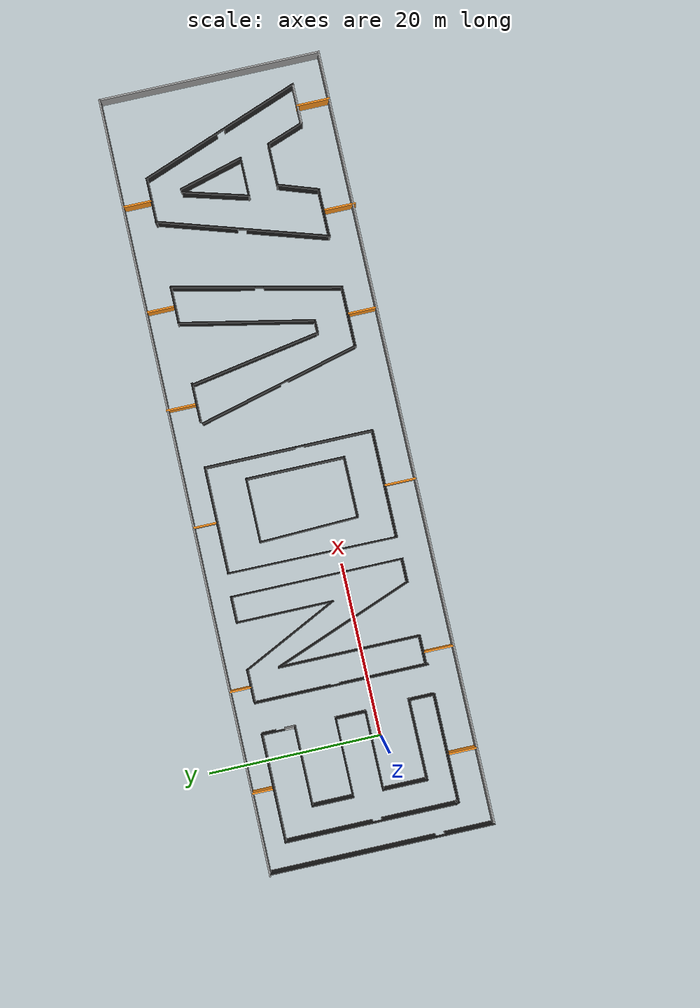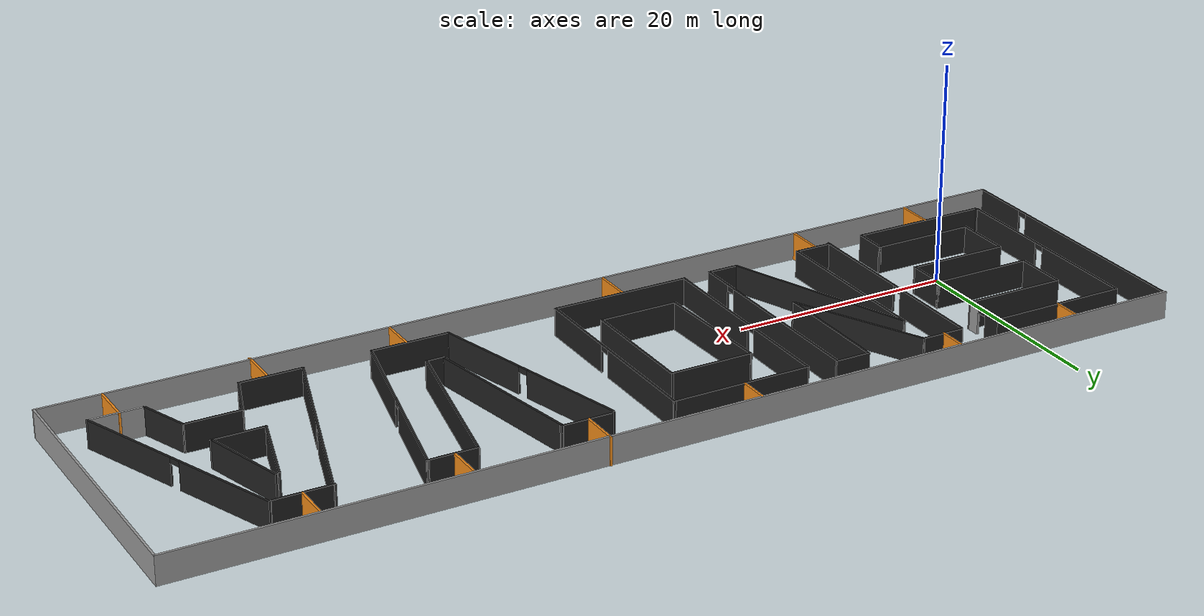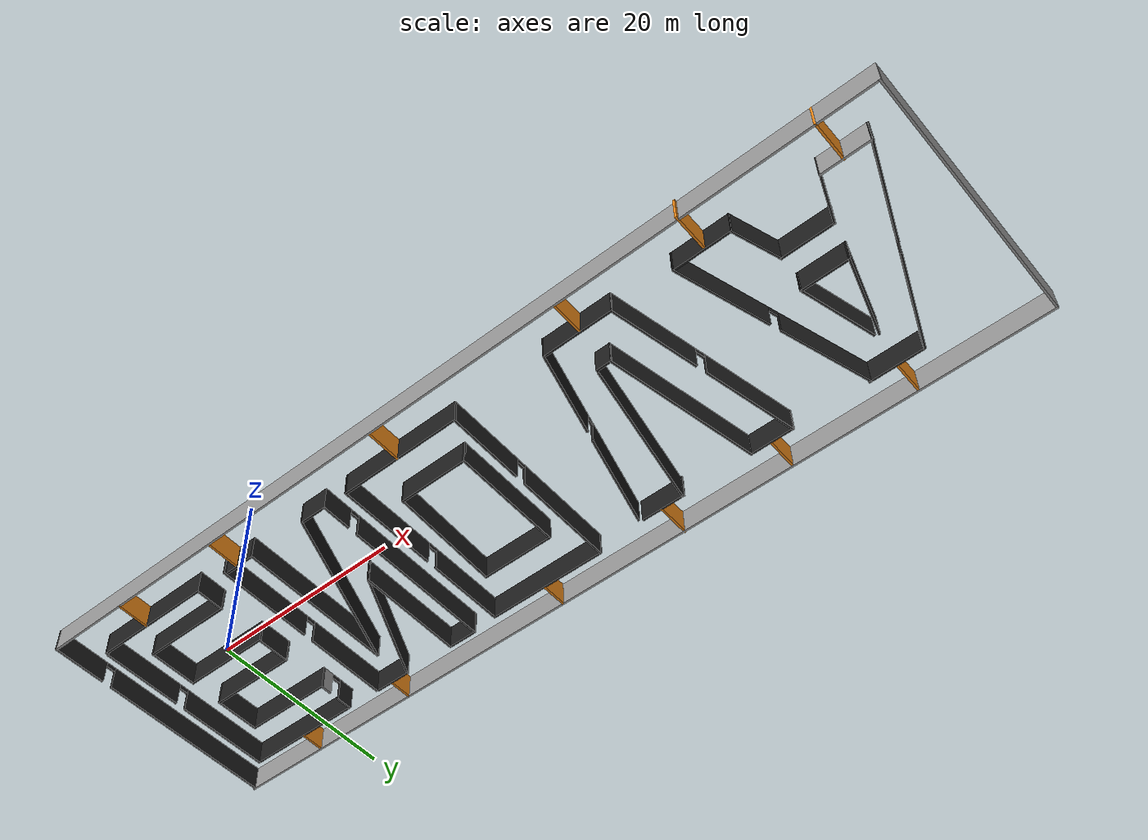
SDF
<?xml version='1.0'?>
<sdf version='1.4'>

  <model name='BuildingDefaultName'>
    <link name='Wall_10'>
      <collision name='Wall_10_Collision'>
        <geometry>
          <box>
            <size>12.516 0.2 2.5</size>
          </box>
        </geometry>
        <pose>0 0 1.25 0 -0 0</pose>
      </collision>
      <visual name='Wall_10_Visual'>
        <pose>0 0 1.25 0 -0 0</pose>
        <geometry>
          <box>
            <size>12.516 0.2 2.5</size>
          </box>
        </geometry>
        <material>
          <script>
            <uri>file://media/materials/scripts/gazebo.material</uri>
            <name>Gazebo/Black</name>
          </script>
        </material>
      </visual>
      <velocity_decay>
        <linear>0</linear>
        <angular>0</angular>
      </velocity_decay>
      <pose>-2.95676 13.1223 0 0 -0 0</pose>
    </link>
    <link name='Wall_101'>
      <collision name='Wall_101_Collision'>
        <geometry>
          <box>
            <size>3.2825 0.2 2.5</size>
          </box>
        </geometry>
        <pose>0 0 1.25 0 -0 0</pose>
      </collision>
      <visual name='Wall_101_Visual'>
        <pose>0 0 1.25 0 -0 0</pose>
        <geometry>
          <box>
            <size>3.2825 0.2 2.5</size>
          </box>
        </geometry>
        <material>
          <script>
            <uri>file://media/materials/scripts/gazebo.material</uri>
            <name>Gazebo/Orange</name>
          </script>
        </material>
      </visual>
      <velocity_decay>
        <linear>0</linear>
        <angular>0</angular>
      </velocity_decay>
      <pose>65.4245 13.8866 0 0 -0 1.5708</pose>
    </link>
    <link name='Wall_103'>
      <collision name='Wall_103_Collision'>
        <geometry>
          <box>
            <size>3.9675 0.2 2.5</size>
          </box>
        </geometry>
        <pose>0 0 1.25 0 -0 0</pose>
      </collision>
      <visual name='Wall_103_Visual'>
        <pose>0 0 1.25 0 -0 0</pose>
        <geometry>
          <box>
            <size>3.9675 0.2 2.5</size>
          </box>
        </geometry>
        <material>
          <script>
            <uri>file://media/materials/scripts/gazebo.material</uri>
            <name>Gazebo/Orange</name>
          </script>
        </material>
      </visual>
      <velocity_decay>
        <linear>0</linear>
        <angular>0</angular>
      </velocity_decay>
      <pose>72.617 -8.37593 0 0 0 -1.5708</pose>
    </link>
    <link name='Wall_105'>
      <collision name='Wall_105_Collision'>
        <geometry>
          <box>
            <size>3.2825 0.2 2.5</size>
          </box>
        </geometry>
        <pose>0 0 1.25 0 -0 0</pose>
      </collision>
      <visual name='Wall_105_Visual'>
        <pose>0 0 1.25 0 -0 0</pose>
        <geometry>
          <box>
            <size>3.2825 0.2 2.5</size>
          </box>
        </geometry>
        <material>
          <script>
            <uri>file://media/materials/scripts/gazebo.material</uri>
            <name>Gazebo/Orange</name>
          </script>
        </material>
      </visual>
      <velocity_decay>
        <linear>0</linear>
        <angular>0</angular>
      </velocity_decay>
      <pose>47.7857 -8.54718 0 0 0 -1.5708</pose>
    </link>
    <link name='Wall_11'>
      <pose>3.20124 11.2042 0 0 0 -1.5708</pose>
      <visual name='Wall_11_Visual_0'>
        <pose>-1.14551 0 1.25 0 -0 0</pose>
        <geometry>
          <box>
            <size>1.74516 0.2 2.5</size>
          </box>
        </geometry>
        <material>
          <script>
            <uri>file://media/materials/scripts/gazebo.material</uri>
            <name>Gazebo/Black</name>
          </script>
        </material>
      </visual>
      <collision name='Wall_11_Collision_0'>
        <geometry>
          <box>
            <size>1.74516 0.2 2.5</size>
          </box>
        </geometry>
        <pose>-1.14551 0 1.25 0 -0 0</pose>
      </collision>
      <visual name='Wall_11_Visual_1'>
        <pose>1.37258 0 1.25 0 -0 0</pose>
        <geometry>
          <box>
            <size>1.29101 0.2 2.5</size>
          </box>
        </geometry>
        <material>
          <script>
            <uri>file://media/materials/scripts/gazebo.material</uri>
            <name>Gazebo/Grey</name>
          </script>
        </material>
      </visual>
      <collision name='Wall_11_Collision_1'>
        <geometry>
          <box>
            <size>1.29101 0.2 2.5</size>
          </box>
        </geometry>
        <pose>1.37258 0 1.25 0 -0 0</pose>
      </collision>
      <visual name='Wall_11_Visual_2'>
        <pose>0.227072 0 2.25 0 -0 0</pose>
        <geometry>
          <box>
            <size>1 0.2 0.5</size>
          </box>
        </geometry>
        <material>
          <script>
            <uri>file://media/materials/scripts/gazebo.material</uri>
            <name>Gazebo/Black</name>
          </script>
        </material>
      </visual>
      <collision name='Wall_11_Collision_2'>
        <geometry>
          <box>
            <size>1 0.2 0.5</size>
          </box>
        </geometry>
        <pose>0.227072 0 2.25 0 -0 0</pose>
      </collision>
    </link>
    <link name='Wall_12'>
      <collision name='Wall_12_Collision'>
        <geometry>
          <box>
            <size>9.24877 0.2 2.5</size>
          </box>
        </geometry>
        <pose>0 0 1.25 0 -0 0</pose>
      </collision>
      <visual name='Wall_12_Visual'>
        <pose>0 0 1.25 0 -0 0</pose>
        <geometry>
          <box>
            <size>9.24877 0.2 2.5</size>
          </box>
        </geometry>
        <material>
          <script>
            <uri>file://media/materials/scripts/gazebo.material</uri>
            <name>Gazebo/Black</name>
          </script>
        </material>
      </visual>
      <velocity_decay>
        <linear>0</linear>
        <angular>0</angular>
      </velocity_decay>
      <pose>-1.32314 9.28609 0 0 -0 3.14159</pose>
    </link>
    <link name='Wall_13'>
      <collision name='Wall_13_Collision'>
        <geometry>
          <box>
            <size>4.91691 0.2 2.5</size>
          </box>
        </geometry>
        <pose>0 0 1.25 0 -0 0</pose>
      </collision>
      <visual name='Wall_13_Visual'>
        <pose>0 0 1.25 0 -0 0</pose>
        <geometry>
          <box>
            <size>4.91691 0.2 2.5</size>
          </box>
        </geometry>
        <material>
          <script>
            <uri>file://media/materials/scripts/gazebo.material</uri>
            <name>Gazebo/Black</name>
          </script>
        </material>
      </visual>
      <velocity_decay>
        <linear>0</linear>
        <angular>0</angular>
      </velocity_decay>
      <pose>-5.84752 6.92763 0 0 0 -1.5708</pose>
    </link>
    <link name='Wall_14'>
      <collision name='Wall_14_Collision'>
        <geometry>
          <box>
            <size>9.19077 0.2 2.5</size>
          </box>
        </geometry>
        <pose>0 0 1.25 0 -0 0</pose>
      </collision>
      <visual name='Wall_14_Visual'>
        <pose>0 0 1.25 0 -0 0</pose>
        <geometry>
          <box>
            <size>9.19077 0.2 2.5</size>
          </box>
        </geometry>
        <material>
          <script>
            <uri>file://media/materials/scripts/gazebo.material</uri>
            <name>Gazebo/Black</name>
          </script>
        </material>
      </visual>
      <velocity_decay>
        <linear>0</linear>
        <angular>0</angular>
      </velocity_decay>
      <pose>-1.35214 4.56918 0 0 -0 0</pose>
    </link>
    <link name='Wall_15'>
      <collision name='Wall_15_Collision'>
        <geometry>
          <box>
            <size>3.67554 0.2 2.5</size>
          </box>
        </geometry>
        <pose>0 0 1.25 0 -0 0</pose>
      </collision>
      <visual name='Wall_15_Visual'>
        <pose>0 0 1.25 0 -0 0</pose>
        <geometry>
          <box>
            <size>3.67554 0.2 2.5</size>
          </box>
        </geometry>
        <material>
          <script>
            <uri>file://media/materials/scripts/gazebo.material</uri>
            <name>Gazebo/Black</name>
          </script>
        </material>
      </visual>
      <velocity_decay>
        <linear>0</linear>
        <angular>0</angular>
      </velocity_decay>
      <pose>3.14324 2.83141 0 0 0 -1.5708</pose>
    </link>
    <link name='Wall_16'>
      <collision name='Wall_16_Collision'>
        <geometry>
          <box>
            <size>9.15305 0.2 2.5</size>
          </box>
        </geometry>
        <pose>0 0 1.25 0 -0 0</pose>
      </collision>
      <visual name='Wall_16_Visual'>
        <pose>0 0 1.25 0 -0 0</pose>
        <geometry>
          <box>
            <size>9.15305 0.2 2.5</size>
          </box>
        </geometry>
        <material>
          <script>
            <uri>file://media/materials/scripts/gazebo.material</uri>
            <name>Gazebo/Black</name>
          </script>
        </material>
      </visual>
      <velocity_decay>
        <linear>0</linear>
        <angular>0</angular>
      </velocity_decay>
      <pose>-1.33328 1.09364 0 0 -0 3.14159</pose>
    </link>
    <link name='Wall_17'>
      <collision name='Wall_17_Collision'>
        <geometry>
          <box>
            <size>5.29523 0.2 2.5</size>
          </box>
        </geometry>
        <pose>0 0 1.25 0 -0 0</pose>
      </collision>
      <visual name='Wall_17_Visual'>
        <pose>0 0 1.25 0 -0 0</pose>
        <geometry>
          <box>
            <size>5.29523 0.2 2.5</size>
          </box>
        </geometry>
        <material>
          <script>
            <uri>file://media/materials/scripts/gazebo.material</uri>
            <name>Gazebo/Black</name>
          </script>
        </material>
      </visual>
      <velocity_decay>
        <linear>0</linear>
        <angular>0</angular>
      </velocity_decay>
      <pose>-5.8098 -1.45398 0 0 0 -1.5708</pose>
    </link>
    <link name='Wall_18'>
      <collision name='Wall_18_Collision'>
        <geometry>
          <box>
            <size>9.37142 0.2 2.5</size>
          </box>
        </geometry>
        <pose>0 0 1.25 0 -0 0</pose>
      </collision>
      <visual name='Wall_18_Visual'>
        <pose>0 0 1.25 0 -0 0</pose>
        <geometry>
          <box>
            <size>9.37142 0.2 2.5</size>
          </box>
        </geometry>
        <material>
          <script>
            <uri>file://media/materials/scripts/gazebo.material</uri>
            <name>Gazebo/Black</name>
          </script>
        </material>
      </visual>
      <velocity_decay>
        <linear>0</linear>
        <angular>0</angular>
      </velocity_decay>
      <pose>-1.22409 -4.00159 0 0 -0 0</pose>
    </link>
    <link name='Wall_19'>
      <collision name='Wall_19_Collision'>
        <geometry>
          <box>
            <size>3.11156 0.2 2.5</size>
          </box>
        </geometry>
        <pose>0 0 1.25 0 -0 0</pose>
      </collision>
      <visual name='Wall_19_Visual'>
        <pose>0 0 1.25 0 -0 0</pose>
        <geometry>
          <box>
            <size>3.11156 0.2 2.5</size>
          </box>
        </geometry>
        <material>
          <script>
            <uri>file://media/materials/scripts/gazebo.material</uri>
            <name>Gazebo/Black</name>
          </script>
        </material>
      </visual>
      <velocity_decay>
        <linear>0</linear>
        <angular>0</angular>
      </velocity_decay>
      <pose>3.36161 -5.45737 0 0 0 -1.5708</pose>
    </link>
    <link name='Wall_20'>
      <collision name='Wall_20_Collision'>
        <geometry>
          <box>
            <size>12.5741 0.2 2.5</size>
          </box>
        </geometry>
        <pose>0 0 1.25 0 -0 0</pose>
      </collision>
      <visual name='Wall_20_Visual'>
        <pose>0 0 1.25 0 -0 0</pose>
        <geometry>
          <box>
            <size>12.5741 0.2 2.5</size>
          </box>
        </geometry>
        <material>
          <script>
            <uri>file://media/materials/scripts/gazebo.material</uri>
            <name>Gazebo/Black</name>
          </script>
        </material>
      </visual>
      <velocity_decay>
        <linear>0</linear>
        <angular>0</angular>
      </velocity_decay>
      <pose>-2.82545 -6.91315 0 0 -0 3.14159</pose>
    </link>
    <link name='Wall_21'>
      <collision name='Wall_21_Collision'>
        <geometry>
          <box>
            <size>0.491673 0.2 2.5</size>
          </box>
        </geometry>
        <pose>0 0 1.25 0 -0 0</pose>
      </collision>
      <visual name='Wall_21_Visual'>
        <pose>0 0 1.25 0 -0 0</pose>
        <geometry>
          <box>
            <size>0.491673 0.2 2.5</size>
          </box>
        </geometry>
        <material>
          <script>
            <uri>file://media/materials/scripts/gazebo.material</uri>
            <name>Gazebo/Black</name>
          </script>
        </material>
      </visual>
      <velocity_decay>
        <linear>0</linear>
        <angular>0</angular>
      </velocity_decay>
      <pose>-9.06364 -6.77657 0 0 -0 1.92894</pose>
    </link>
    <link name='Wall_23'>
      <pose>6.82727 3.06609 0 0 -0 1.5708</pose>
      <visual name='Wall_23_Visual_0'>
        <pose>-4.94921 0 1.25 0 -0 0</pose>
        <geometry>
          <box>
            <size>10.2995 0.2 2.5</size>
          </box>
        </geometry>
        <material>
          <script>
            <uri>file://media/materials/scripts/gazebo.material</uri>
            <name>Gazebo/Black</name>
          </script>
        </material>
      </visual>
      <collision name='Wall_23_Collision_0'>
        <geometry>
          <box>
            <size>10.2995 0.2 2.5</size>
          </box>
        </geometry>
        <pose>-4.94921 0 1.25 0 -0 0</pose>
      </collision>
      <visual name='Wall_23_Visual_1'>
        <pose>5.64974 0 1.25 0 -0 0</pose>
        <geometry>
          <box>
            <size>8.89841 0.2 2.5</size>
          </box>
        </geometry>
        <material>
          <script>
            <uri>file://media/materials/scripts/gazebo.material</uri>
            <name>Gazebo/Black</name>
          </script>
        </material>
      </visual>
      <collision name='Wall_23_Collision_1'>
        <geometry>
          <box>
            <size>8.89841 0.2 2.5</size>
          </box>
        </geometry>
        <pose>5.64974 0 1.25 0 -0 0</pose>
      </collision>
      <visual name='Wall_23_Visual_2'>
        <pose>0.700535 0 2.25 0 -0 0</pose>
        <geometry>
          <box>
            <size>1 0.2 0.5</size>
          </box>
        </geometry>
        <material>
          <script>
            <uri>file://media/materials/scripts/gazebo.material</uri>
            <name>Gazebo/Black</name>
          </script>
        </material>
      </visual>
      <collision name='Wall_23_Collision_2'>
        <geometry>
          <box>
            <size>1 0.2 0.5</size>
          </box>
        </geometry>
        <pose>0.700535 0 2.25 0 -0 0</pose>
      </collision>
    </link>
    <link name='Wall_25'>
      <collision name='Wall_25_Collision'>
        <geometry>
          <box>
            <size>3.37669 0.2 2.5</size>
          </box>
        </geometry>
        <pose>0 0 1.25 0 -0 0</pose>
      </collision>
      <visual name='Wall_25_Visual'>
        <pose>0 0 1.25 0 -0 0</pose>
        <geometry>
          <box>
            <size>3.37669 0.2 2.5</size>
          </box>
        </geometry>
        <material>
          <script>
            <uri>file://media/materials/scripts/gazebo.material</uri>
            <name>Gazebo/Black</name>
          </script>
        </material>
      </visual>
      <velocity_decay>
        <linear>0</linear>
        <angular>0</angular>
      </velocity_decay>
      <pose>8.56513 -6.76107 0 0 -0 0</pose>
    </link>
    <link name='Wall_26'>
      <collision name='Wall_26_Collision'>
        <geometry>
          <box>
            <size>16.5648 0.2 2.5</size>
          </box>
        </geometry>
        <pose>0 0 1.25 0 -0 0</pose>
      </collision>
      <visual name='Wall_26_Visual'>
        <pose>0 0 1.25 0 -0 0</pose>
        <geometry>
          <box>
            <size>16.5648 0.2 2.5</size>
          </box>
        </geometry>
        <material>
          <script>
            <uri>file://media/materials/scripts/gazebo.material</uri>
            <name>Gazebo/Black</name>
          </script>
        </material>
      </visual>
      <velocity_decay>
        <linear>0</linear>
        <angular>0</angular>
      </velocity_decay>
      <pose>10.1535 1.42132 0 0 -0 1.5708</pose>
    </link>
    <link name='Wall_27'>
      <collision name='Wall_27_Collision'>
        <geometry>
          <box>
            <size>17.7202 0.2 2.5</size>
          </box>
        </geometry>
        <pose>0 0 1.25 0 -0 0</pose>
      </collision>
      <visual name='Wall_27_Visual'>
        <pose>0 0 1.25 0 -0 0</pose>
        <geometry>
          <box>
            <size>17.7202 0.2 2.5</size>
          </box>
        </geometry>
        <material>
          <script>
            <uri>file://media/materials/scripts/gazebo.material</uri>
            <name>Gazebo/Black</name>
          </script>
        </material>
      </visual>
      <velocity_decay>
        <linear>0</linear>
        <angular>0</angular>
      </velocity_decay>
      <pose>13.282 1.42132 0 0 0 -1.20559</pose>
    </link>
    <link name='Wall_28'>
      <collision name='Wall_28_Collision'>
        <geometry>
          <box>
            <size>2.89538 0.2 2.5</size>
          </box>
        </geometry>
        <pose>0 0 1.25 0 -0 0</pose>
      </collision>
      <visual name='Wall_28_Visual'>
        <pose>0 0 1.25 0 -0 0</pose>
        <geometry>
          <box>
            <size>2.89538 0.2 2.5</size>
          </box>
        </geometry>
        <material>
          <script>
            <uri>file://media/materials/scripts/gazebo.material</uri>
            <name>Gazebo/Black</name>
          </script>
        </material>
      </visual>
      <velocity_decay>
        <linear>0</linear>
        <angular>0</angular>
      </velocity_decay>
      <pose>17.7583 -6.76107 0 0 -0 0</pose>
    </link>
    <link name='Wall_29'>
      <pose>19.106 3.2022 0 0 -0 1.5708</pose>
      <visual name='Wall_29_Visual_0'>
        <pose>-8.47589 0 1.25 0 -0 0</pose>
        <geometry>
          <box>
            <size>3.17473 0.2 2.5</size>
          </box>
        </geometry>
        <material>
          <script>
            <uri>file://media/materials/scripts/gazebo.material</uri>
            <name>Gazebo/Black</name>
          </script>
        </material>
      </visual>
      <collision name='Wall_29_Collision_0'>
        <geometry>
          <box>
            <size>3.17473 0.2 2.5</size>
          </box>
        </geometry>
        <pose>-8.47589 0 1.25 0 -0 0</pose>
      </collision>
      <visual name='Wall_29_Visual_1'>
        <pose>2.08736 0 1.25 0 -0 0</pose>
        <geometry>
          <box>
            <size>15.9518 0.2 2.5</size>
          </box>
        </geometry>
        <material>
          <script>
            <uri>file://media/materials/scripts/gazebo.material</uri>
            <name>Gazebo/Black</name>
          </script>
        </material>
      </visual>
      <collision name='Wall_29_Collision_1'>
        <geometry>
          <box>
            <size>15.9518 0.2 2.5</size>
          </box>
        </geometry>
        <pose>2.08736 0 1.25 0 -0 0</pose>
      </collision>
      <visual name='Wall_29_Visual_2'>
        <pose>-6.38852 0 2.25 0 -0 0</pose>
        <geometry>
          <box>
            <size>1 0.2 0.5</size>
          </box>
        </geometry>
        <material>
          <script>
            <uri>file://media/materials/scripts/gazebo.material</uri>
            <name>Gazebo/Black</name>
          </script>
        </material>
      </visual>
      <collision name='Wall_29_Collision_2'>
        <geometry>
          <box>
            <size>1 0.2 0.5</size>
          </box>
        </geometry>
        <pose>-6.38852 0 2.25 0 -0 0</pose>
      </collision>
    </link>
    <link name='Wall_30'>
      <collision name='Wall_30_Collision'>
        <geometry>
          <box>
            <size>3.18417 0.2 2.5</size>
          </box>
        </geometry>
        <pose>0 0 1.25 0 -0 0</pose>
      </collision>
      <visual name='Wall_30_Visual'>
        <pose>0 0 1.25 0 -0 0</pose>
        <geometry>
          <box>
            <size>3.18417 0.2 2.5</size>
          </box>
        </geometry>
        <material>
          <script>
            <uri>file://media/materials/scripts/gazebo.material</uri>
            <name>Gazebo/Black</name>
          </script>
        </material>
      </visual>
      <velocity_decay>
        <linear>0</linear>
        <angular>0</angular>
      </velocity_decay>
      <pose>17.6139 13.1655 0 0 -0 3.14159</pose>
    </link>
    <link name='Wall_31'>
      <collision name='Wall_31_Collision'>
        <geometry>
          <box>
            <size>11.3666 0.2 2.5</size>
          </box>
        </geometry>
        <pose>0 0 1.25 0 -0 0</pose>
      </collision>
      <visual name='Wall_31_Visual'>
        <pose>0 0 1.25 0 -0 0</pose>
        <geometry>
          <box>
            <size>11.3666 0.2 2.5</size>
          </box>
        </geometry>
        <material>
          <script>
            <uri>file://media/materials/scripts/gazebo.material</uri>
            <name>Gazebo/Black</name>
          </script>
        </material>
      </visual>
      <velocity_decay>
        <linear>0</linear>
        <angular>0</angular>
      </velocity_decay>
      <pose>16.1218 7.58219 0 0 0 -1.5708</pose>
    </link>
    <link name='Wall_32'>
      <collision name='Wall_32_Collision'>
        <geometry>
          <box>
            <size>12.6418 0.2 2.5</size>
          </box>
        </geometry>
        <pose>0 0 1.25 0 -0 0</pose>
      </collision>
      <visual name='Wall_32_Visual'>
        <pose>0 0 1.25 0 -0 0</pose>
        <geometry>
          <box>
            <size>12.6418 0.2 2.5</size>
          </box>
        </geometry>
        <material>
          <script>
            <uri>file://media/materials/scripts/gazebo.material</uri>
            <name>Gazebo/Black</name>
          </script>
        </material>
      </visual>
      <velocity_decay>
        <linear>0</linear>
        <angular>0</angular>
      </velocity_decay>
      <pose>13.3783 7.58219 0 0 -0 2.02752</pose>
    </link>
    <link name='Wall_33'>
      <collision name='Wall_33_Collision'>
        <geometry>
          <box>
            <size>3.85801 0.2 2.5</size>
          </box>
        </geometry>
        <pose>0 0 1.25 0 -0 0</pose>
      </collision>
      <visual name='Wall_33_Visual'>
        <pose>0 0 1.25 0 -0 0</pose>
        <geometry>
          <box>
            <size>3.85801 0.2 2.5</size>
          </box>
        </geometry>
        <material>
          <script>
            <uri>file://media/materials/scripts/gazebo.material</uri>
            <name>Gazebo/Black</name>
          </script>
        </material>
      </visual>
      <velocity_decay>
        <linear>0</linear>
        <angular>0</angular>
      </velocity_decay>
      <pose>8.80579 13.1655 0 0 -0 3.14159</pose>
    </link>
    <link name='Wall_35'>
      <collision name='Wall_35_Collision'>
        <geometry>
          <box>
            <size>12.5489 0.2 2.5</size>
          </box>
        </geometry>
        <pose>0 0 1.25 0 -0 0</pose>
      </collision>
      <visual name='Wall_35_Visual'>
        <pose>0 0 1.25 0 -0 0</pose>
        <geometry>
          <box>
            <size>12.5489 0.2 2.5</size>
          </box>
        </geometry>
        <material>
          <script>
            <uri>file://media/materials/scripts/gazebo.material</uri>
            <name>Gazebo/Black</name>
          </script>
        </material>
      </visual>
      <velocity_decay>
        <linear>0</linear>
        <angular>0</angular>
      </velocity_decay>
      <pose>27.9649 12.906 0 0 -0 0</pose>
    </link>
    <link name='Wall_36'>
      <pose>34.1393 3.10328 0 0 0 -1.5708</pose>
      <visual name='Wall_36_Visual_0'>
        <pose>-4.56736 0 1.25 0 -0 0</pose>
        <geometry>
          <box>
            <size>10.6708 0.2 2.5</size>
          </box>
        </geometry>
        <material>
          <script>
            <uri>file://media/materials/scripts/gazebo.material</uri>
            <name>Gazebo/Black</name>
          </script>
        </material>
      </visual>
      <collision name='Wall_36_Collision_0'>
        <geometry>
          <box>
            <size>10.6708 0.2 2.5</size>
          </box>
        </geometry>
        <pose>-4.56736 0 1.25 0 -0 0</pose>
      </collision>
      <visual name='Wall_36_Visual_1'>
        <pose>5.83539 0 1.25 0 -0 0</pose>
        <geometry>
          <box>
            <size>8.13472 0.2 2.5</size>
          </box>
        </geometry>
        <material>
          <script>
            <uri>file://media/materials/scripts/gazebo.material</uri>
            <name>Gazebo/Black</name>
          </script>
        </material>
      </visual>
      <collision name='Wall_36_Collision_1'>
        <geometry>
          <box>
            <size>8.13472 0.2 2.5</size>
          </box>
        </geometry>
        <pose>5.83539 0 1.25 0 -0 0</pose>
      </collision>
      <visual name='Wall_36_Visual_2'>
        <pose>1.26802 0 2.25 0 -0 0</pose>
        <geometry>
          <box>
            <size>1 0.2 0.5</size>
          </box>
        </geometry>
        <material>
          <script>
            <uri>file://media/materials/scripts/gazebo.material</uri>
            <name>Gazebo/Black</name>
          </script>
        </material>
      </visual>
      <collision name='Wall_36_Collision_2'>
        <geometry>
          <box>
            <size>1 0.2 0.5</size>
          </box>
        </geometry>
        <pose>1.26802 0 2.25 0 -0 0</pose>
      </collision>
    </link>
    <link name='Wall_37'>
      <collision name='Wall_37_Collision'>
        <geometry>
          <box>
            <size>12.6762 0.2 2.5</size>
          </box>
        </geometry>
        <pose>0 0 1.25 0 -0 0</pose>
      </collision>
      <visual name='Wall_37_Visual'>
        <pose>0 0 1.25 0 -0 0</pose>
        <geometry>
          <box>
            <size>12.6762 0.2 2.5</size>
          </box>
        </geometry>
        <material>
          <script>
            <uri>file://media/materials/scripts/gazebo.material</uri>
            <name>Gazebo/Black</name>
          </script>
        </material>
      </visual>
      <velocity_decay>
        <linear>0</linear>
        <angular>0</angular>
      </velocity_decay>
      <pose>27.9012 -6.69947 0 0 -0 3.14159</pose>
    </link>
    <link name='Wall_38'>
      <pose>21.7268 3.10328 0 0 -0 1.5643</pose>
      <visual name='Wall_38_Visual_0'>
        <pose>-4.61312 0 1.25 0 -0 0</pose>
        <geometry>
          <box>
            <size>10.5797 0.2 2.5</size>
          </box>
        </geometry>
        <material>
          <script>
            <uri>file://media/materials/scripts/gazebo.material</uri>
            <name>Gazebo/Black</name>
          </script>
        </material>
      </visual>
      <collision name='Wall_38_Collision_0'>
        <geometry>
          <box>
            <size>10.5797 0.2 2.5</size>
          </box>
        </geometry>
        <pose>-4.61312 0 1.25 0 -0 0</pose>
      </collision>
      <visual name='Wall_38_Visual_1'>
        <pose>5.78983 0 1.25 0 -0 0</pose>
        <geometry>
          <box>
            <size>8.22624 0.2 2.5</size>
          </box>
        </geometry>
        <material>
          <script>
            <uri>file://media/materials/scripts/gazebo.material</uri>
            <name>Gazebo/Black</name>
          </script>
        </material>
      </visual>
      <collision name='Wall_38_Collision_1'>
        <geometry>
          <box>
            <size>8.22624 0.2 2.5</size>
          </box>
        </geometry>
        <pose>5.78983 0 1.25 0 -0 0</pose>
      </collision>
      <visual name='Wall_38_Visual_2'>
        <pose>1.17671 0 2.25 0 -0 0</pose>
        <geometry>
          <box>
            <size>1 0.2 0.5</size>
          </box>
        </geometry>
        <material>
          <script>
            <uri>file://media/materials/scripts/gazebo.material</uri>
            <name>Gazebo/Black</name>
          </script>
        </material>
      </visual>
      <collision name='Wall_38_Collision_2'>
        <geometry>
          <box>
            <size>1 0.2 0.5</size>
          </box>
        </geometry>
        <pose>1.17671 0 2.25 0 -0 0</pose>
      </collision>
    </link>
    <link name='Wall_40'>
      <collision name='Wall_40_Collision'>
        <geometry>
          <box>
            <size>7.58389 0.2 2.5</size>
          </box>
        </geometry>
        <pose>0 0 1.25 0 -0 0</pose>
      </collision>
      <visual name='Wall_40_Visual'>
        <pose>0 0 1.25 0 -0 0</pose>
        <geometry>
          <box>
            <size>7.58389 0.2 2.5</size>
          </box>
        </geometry>
        <material>
          <script>
            <uri>file://media/materials/scripts/gazebo.material</uri>
            <name>Gazebo/Black</name>
          </script>
        </material>
      </visual>
      <velocity_decay>
        <linear>0</linear>
        <angular>0</angular>
      </velocity_decay>
      <pose>28.1558 8.57754 0 0 -0 0</pose>
    </link>
    <link name='Wall_41'>
      <collision name='Wall_41_Collision'>
        <geometry>
          <box>
            <size>11.6578 0.2 2.5</size>
          </box>
        </geometry>
        <pose>0 0 1.25 0 -0 0</pose>
      </collision>
      <visual name='Wall_41_Visual'>
        <pose>0 0 1.25 0 -0 0</pose>
        <geometry>
          <box>
            <size>11.6578 0.2 2.5</size>
          </box>
        </geometry>
        <material>
          <script>
            <uri>file://media/materials/scripts/gazebo.material</uri>
            <name>Gazebo/Black</name>
          </script>
        </material>
      </visual>
      <velocity_decay>
        <linear>0</linear>
        <angular>0</angular>
      </velocity_decay>
      <pose>31.8478 2.84866 0 0 0 -1.5708</pose>
    </link>
    <link name='Wall_42'>
      <collision name='Wall_42_Collision'>
        <geometry>
          <box>
            <size>7.20196 0.2 2.5</size>
          </box>
        </geometry>
        <pose>0 0 1.25 0 -0 0</pose>
      </collision>
      <visual name='Wall_42_Visual'>
        <pose>0 0 1.25 0 -0 0</pose>
        <geometry>
          <box>
            <size>7.20196 0.2 2.5</size>
          </box>
        </geometry>
        <material>
          <script>
            <uri>file://media/materials/scripts/gazebo.material</uri>
            <name>Gazebo/Black</name>
          </script>
        </material>
      </visual>
      <velocity_decay>
        <linear>0</linear>
        <angular>0</angular>
      </velocity_decay>
      <pose>28.3468 -2.88022 0 0 -0 3.14159</pose>
    </link>
    <link name='Wall_43'>
      <collision name='Wall_43_Collision'>
        <geometry>
          <box>
            <size>11.6641 0.2 2.5</size>
          </box>
        </geometry>
        <pose>0 0 1.25 0 -0 0</pose>
      </collision>
      <visual name='Wall_43_Visual'>
        <pose>0 0 1.25 0 -0 0</pose>
        <geometry>
          <box>
            <size>11.6641 0.2 2.5</size>
          </box>
        </geometry>
        <material>
          <script>
            <uri>file://media/materials/scripts/gazebo.material</uri>
            <name>Gazebo/Black</name>
          </script>
        </material>
      </visual>
      <velocity_decay>
        <linear>0</linear>
        <angular>0</angular>
      </velocity_decay>
      <pose>24.6549 2.84866 0 0 -0 1.60412</pose>
    </link>
    <link name='Wall_45'>
      <collision name='Wall_45_Collision'>
        <geometry>
          <box>
            <size>4.52849 0.2 2.5</size>
          </box>
        </geometry>
        <pose>0 0 1.25 0 -0 0</pose>
      </collision>
      <visual name='Wall_45_Visual'>
        <pose>0 0 1.25 0 -0 0</pose>
        <geometry>
          <box>
            <size>4.52849 0.2 2.5</size>
          </box>
        </geometry>
        <material>
          <script>
            <uri>file://media/materials/scripts/gazebo.material</uri>
            <name>Gazebo/Black</name>
          </script>
        </material>
      </visual>
      <velocity_decay>
        <linear>0</linear>
        <angular>0</angular>
      </velocity_decay>
      <pose>41.6505 12.2695 0 0 -0 0</pose>
    </link>
    <link name='Wall_52'>
      <collision name='Wall_52_Collision'>
        <geometry>
          <box>
            <size>15.4584 0.2 2.5</size>
          </box>
        </geometry>
        <pose>0 0 1.25 0 -0 0</pose>
      </collision>
      <visual name='Wall_52_Visual'>
        <pose>0 0 1.25 0 -0 0</pose>
        <geometry>
          <box>
            <size>15.4584 0.2 2.5</size>
          </box>
        </geometry>
        <material>
          <script>
            <uri>file://media/materials/scripts/gazebo.material</uri>
            <name>Gazebo/Black</name>
          </script>
        </material>
      </visual>
      <velocity_decay>
        <linear>0</linear>
        <angular>0</angular>
      </velocity_decay>
      <pose>45.0242 4.75829 0 0 0 -1.39467</pose>
    </link>
    <link name='Wall_54'>
      <collision name='Wall_54_Collision'>
        <geometry>
          <box>
            <size>1.61634 0.2 2.5</size>
          </box>
        </geometry>
        <pose>0 0 1.25 0 -0 0</pose>
      </collision>
      <visual name='Wall_54_Visual'>
        <pose>0 0 1.25 0 -0 0</pose>
        <geometry>
          <box>
            <size>1.61634 0.2 2.5</size>
          </box>
        </geometry>
        <material>
          <script>
            <uri>file://media/materials/scripts/gazebo.material</uri>
            <name>Gazebo/Black</name>
          </script>
        </material>
      </visual>
      <velocity_decay>
        <linear>0</linear>
        <angular>0</angular>
      </velocity_decay>
      <pose>47.1597 -3.05756 0 0 -0 0</pose>
    </link>
    <link name='Wall_55'>
      <collision name='Wall_55_Collision'>
        <geometry>
          <box>
            <size>15.8308 0.2 2.5</size>
          </box>
        </geometry>
        <pose>0 0 1.25 0 -0 0</pose>
      </collision>
      <visual name='Wall_55_Visual'>
        <pose>0 0 1.25 0 -0 0</pose>
        <geometry>
          <box>
            <size>15.8308 0.2 2.5</size>
          </box>
        </geometry>
        <material>
          <script>
            <uri>file://media/materials/scripts/gazebo.material</uri>
            <name>Gazebo/Black</name>
          </script>
        </material>
      </visual>
      <velocity_decay>
        <linear>0</linear>
        <angular>0</angular>
      </velocity_decay>
      <pose>49.413 4.60356 0 0 -0 1.37179</pose>
    </link>
    <link name='Wall_56'>
      <collision name='Wall_56_Collision'>
        <geometry>
          <box>
            <size>4.44903 0.2 2.5</size>
          </box>
        </geometry>
        <pose>0 0 1.25 0 -0 0</pose>
      </collision>
      <visual name='Wall_56_Visual'>
        <pose>0 0 1.25 0 -0 0</pose>
        <geometry>
          <box>
            <size>4.44903 0.2 2.5</size>
          </box>
        </geometry>
        <material>
          <script>
            <uri>file://media/materials/scripts/gazebo.material</uri>
            <name>Gazebo/Black</name>
          </script>
        </material>
      </visual>
      <velocity_decay>
        <linear>0</linear>
        <angular>0</angular>
      </velocity_decay>
      <pose>53.0826 12.2647 0 0 -0 0</pose>
    </link>
    <link name='Wall_57'>
      <pose>53.0826 2.67218 0 0 0 -1.78876</pose>
      <visual name='Wall_57_Visual_0'>
        <pose>-5.04838 0 1.25 0 -0 0</pose>
        <geometry>
          <box>
            <size>9.75315 0.2 2.5</size>
          </box>
        </geometry>
        <material>
          <script>
            <uri>file://media/materials/scripts/gazebo.material</uri>
            <name>Gazebo/Black</name>
          </script>
        </material>
      </visual>
      <collision name='Wall_57_Collision_0'>
        <geometry>
          <box>
            <size>9.75315 0.2 2.5</size>
          </box>
        </geometry>
        <pose>-5.04838 0 1.25 0 -0 0</pose>
      </collision>
      <visual name='Wall_57_Visual_1'>
        <pose>5.37657 0 1.25 0 -0 0</pose>
        <geometry>
          <box>
            <size>9.09675 0.2 2.5</size>
          </box>
        </geometry>
        <material>
          <script>
            <uri>file://media/materials/scripts/gazebo.material</uri>
            <name>Gazebo/Black</name>
          </script>
        </material>
      </visual>
      <collision name='Wall_57_Collision_1'>
        <geometry>
          <box>
            <size>9.09675 0.2 2.5</size>
          </box>
        </geometry>
        <pose>5.37657 0 1.25 0 -0 0</pose>
      </collision>
      <visual name='Wall_57_Visual_2'>
        <pose>0.328201 0 2.25 0 -0 0</pose>
        <geometry>
          <box>
            <size>1 0.2 0.5</size>
          </box>
        </geometry>
        <material>
          <script>
            <uri>file://media/materials/scripts/gazebo.material</uri>
            <name>Gazebo/Black</name>
          </script>
        </material>
      </visual>
      <collision name='Wall_57_Collision_2'>
        <geometry>
          <box>
            <size>1 0.2 0.5</size>
          </box>
        </geometry>
        <pose>0.328201 0 2.25 0 -0 0</pose>
      </collision>
    </link>
    <link name='Wall_58'>
      <collision name='Wall_58_Collision'>
        <geometry>
          <box>
            <size>7.15295 0.2 2.5</size>
          </box>
        </geometry>
        <pose>0 0 1.25 0 -0 0</pose>
      </collision>
      <visual name='Wall_58_Visual'>
        <pose>0 0 1.25 0 -0 0</pose>
        <geometry>
          <box>
            <size>7.15295 0.2 2.5</size>
          </box>
        </geometry>
        <material>
          <script>
            <uri>file://media/materials/scripts/gazebo.material</uri>
            <name>Gazebo/Black</name>
          </script>
        </material>
      </visual>
      <velocity_decay>
        <linear>0</linear>
        <angular>0</angular>
      </velocity_decay>
      <pose>47.4816 -6.92032 0 0 -0 3.14159</pose>
    </link>
    <link name='Wall_59'>
      <pose>41.5588 2.54343 0 0 -0 1.82376</pose>
      <visual name='Wall_59_Visual_0'>
        <pose>-5.50014 0 1.25 0 -0 0</pose>
        <geometry>
          <box>
            <size>8.74943 0.2 2.5</size>
          </box>
        </geometry>
        <material>
          <script>
            <uri>file://media/materials/scripts/gazebo.material</uri>
            <name>Gazebo/Black</name>
          </script>
        </material>
      </visual>
      <collision name='Wall_59_Collision_0'>
        <geometry>
          <box>
            <size>8.74943 0.2 2.5</size>
          </box>
        </geometry>
        <pose>-5.50014 0 1.25 0 -0 0</pose>
      </collision>
      <visual name='Wall_59_Visual_1'>
        <pose>4.87471 0 1.25 0 -0 0</pose>
        <geometry>
          <box>
            <size>10.0003 0.2 2.5</size>
          </box>
        </geometry>
        <material>
          <script>
            <uri>file://media/materials/scripts/gazebo.material</uri>
            <name>Gazebo/Black</name>
          </script>
        </material>
      </visual>
      <collision name='Wall_59_Collision_1'>
        <geometry>
          <box>
            <size>10.0003 0.2 2.5</size>
          </box>
        </geometry>
        <pose>4.87471 0 1.25 0 -0 0</pose>
      </collision>
      <visual name='Wall_59_Visual_2'>
        <pose>-0.625423 0 2.25 0 -0 0</pose>
        <geometry>
          <box>
            <size>1 0.2 0.5</size>
          </box>
        </geometry>
        <material>
          <script>
            <uri>file://media/materials/scripts/gazebo.material</uri>
            <name>Gazebo/Black</name>
          </script>
        </material>
      </visual>
      <collision name='Wall_59_Collision_2'>
        <geometry>
          <box>
            <size>1 0.2 0.5</size>
          </box>
        </geometry>
        <pose>-0.625423 0 2.25 0 -0 0</pose>
      </collision>
    </link>
    <link name='Wall_61'>
      <collision name='Wall_61_Collision'>
        <geometry>
          <box>
            <size>5.22158 0.2 2.5</size>
          </box>
        </geometry>
        <pose>0 0 1.25 0 -0 0</pose>
      </collision>
      <visual name='Wall_61_Visual'>
        <pose>0 0 1.25 0 -0 0</pose>
        <geometry>
          <box>
            <size>5.22158 0.2 2.5</size>
          </box>
        </geometry>
        <material>
          <script>
            <uri>file://media/materials/scripts/gazebo.material</uri>
            <name>Gazebo/Black</name>
          </script>
        </material>
      </visual>
      <velocity_decay>
        <linear>0</linear>
        <angular>0</angular>
      </velocity_decay>
      <pose>65.3147 12.2647 0 0 -0 0</pose>
    </link>
    <link name='Wall_63'>
      <pose>59.9712 2.73656 0 0 0 -1.87214</pose>
      <visual name='Wall_63_Visual_0'>
        <pose>-5.33125 0 1.25 0 -0 0</pose>
        <geometry>
          <box>
            <size>9.49301 0.2 2.5</size>
          </box>
        </geometry>
        <material>
          <script>
            <uri>file://media/materials/scripts/gazebo.material</uri>
            <name>Gazebo/Black</name>
          </script>
        </material>
      </visual>
      <collision name='Wall_63_Collision_0'>
        <geometry>
          <box>
            <size>9.49301 0.2 2.5</size>
          </box>
        </geometry>
        <pose>-5.33125 0 1.25 0 -0 0</pose>
      </collision>
      <visual name='Wall_63_Visual_1'>
        <pose>5.2465 0 1.25 0 -0 0</pose>
        <geometry>
          <box>
            <size>9.66249 0.2 2.5</size>
          </box>
        </geometry>
        <material>
          <script>
            <uri>file://media/materials/scripts/gazebo.material</uri>
            <name>Gazebo/Black</name>
          </script>
        </material>
      </visual>
      <collision name='Wall_63_Collision_1'>
        <geometry>
          <box>
            <size>9.66249 0.2 2.5</size>
          </box>
        </geometry>
        <pose>5.2465 0 1.25 0 -0 0</pose>
      </collision>
      <visual name='Wall_63_Visual_2'>
        <pose>-0.08474 0 2.25 0 -0 0</pose>
        <geometry>
          <box>
            <size>1 0.2 0.5</size>
          </box>
        </geometry>
        <material>
          <script>
            <uri>file://media/materials/scripts/gazebo.material</uri>
            <name>Gazebo/Black</name>
          </script>
        </material>
      </visual>
      <collision name='Wall_63_Collision_2'>
        <geometry>
          <box>
            <size>1 0.2 0.5</size>
          </box>
        </geometry>
        <pose>-0.08474 0 2.25 0 -0 0</pose>
      </collision>
    </link>
    <link name='Wall_64'>
      <collision name='Wall_64_Collision'>
        <geometry>
          <box>
            <size>5.73661 0.2 2.5</size>
          </box>
        </geometry>
        <pose>0 0 1.25 0 -0 0</pose>
      </collision>
      <visual name='Wall_64_Visual'>
        <pose>0 0 1.25 0 -0 0</pose>
        <geometry>
          <box>
            <size>5.73661 0.2 2.5</size>
          </box>
        </geometry>
        <material>
          <script>
            <uri>file://media/materials/scripts/gazebo.material</uri>
            <name>Gazebo/Black</name>
          </script>
        </material>
      </visual>
      <velocity_decay>
        <linear>0</linear>
        <angular>0</angular>
      </velocity_decay>
      <pose>59.7781 -6.79156 0 0 -0 0</pose>
    </link>
    <link name='Wall_65'>
      <collision name='Wall_65_Collision'>
        <geometry>
          <box>
            <size>4.96406 0.2 2.5</size>
          </box>
        </geometry>
        <pose>0 0 1.25 0 -0 0</pose>
      </collision>
      <visual name='Wall_65_Visual'>
        <pose>0 0 1.25 0 -0 0</pose>
        <geometry>
          <box>
            <size>4.96406 0.2 2.5</size>
          </box>
        </geometry>
        <material>
          <script>
            <uri>file://media/materials/scripts/gazebo.material</uri>
            <name>Gazebo/Black</name>
          </script>
        </material>
      </visual>
      <velocity_decay>
        <linear>0</linear>
        <angular>0</angular>
      </velocity_decay>
      <pose>63.3189 -4.53829 0 0 -0 1.2405</pose>
    </link>
    <link name='Wall_66'>
      <collision name='Wall_66_Collision'>
        <geometry>
          <box>
            <size>5.09282 0.2 2.5</size>
          </box>
        </geometry>
        <pose>0 0 1.25 0 -0 0</pose>
      </collision>
      <visual name='Wall_66_Visual'>
        <pose>0 0 1.25 0 -0 0</pose>
        <geometry>
          <box>
            <size>5.09282 0.2 2.5</size>
          </box>
        </geometry>
        <material>
          <script>
            <uri>file://media/materials/scripts/gazebo.material</uri>
            <name>Gazebo/Black</name>
          </script>
        </material>
      </visual>
      <velocity_decay>
        <linear>0</linear>
        <angular>0</angular>
      </velocity_decay>
      <pose>66.5379 -2.28501 0 0 -0 0</pose>
    </link>
    <link name='Wall_67'>
      <collision name='Wall_67_Collision'>
        <geometry>
          <box>
            <size>4.72124 0.2 2.5</size>
          </box>
        </geometry>
        <pose>0 0 1.25 0 -0 0</pose>
      </collision>
      <visual name='Wall_67_Visual'>
        <pose>0 0 1.25 0 -0 0</pose>
        <geometry>
          <box>
            <size>4.72124 0.2 2.5</size>
          </box>
        </geometry>
        <material>
          <script>
            <uri>file://media/materials/scripts/gazebo.material</uri>
            <name>Gazebo/Black</name>
          </script>
        </material>
      </visual>
      <velocity_decay>
        <linear>0</linear>
        <angular>0</angular>
      </velocity_decay>
      <pose>69.7568 -4.40953 0 0 0 -1.22202</pose>
    </link>
    <link name='Wall_68'>
      <collision name='Wall_68_Collision'>
        <geometry>
          <box>
            <size>4.8353 0.2 2.5</size>
          </box>
        </geometry>
        <pose>0 0 1.25 0 -0 0</pose>
      </collision>
      <visual name='Wall_68_Visual'>
        <pose>0 0 1.25 0 -0 0</pose>
        <geometry>
          <box>
            <size>4.8353 0.2 2.5</size>
          </box>
        </geometry>
        <material>
          <script>
            <uri>file://media/materials/scripts/gazebo.material</uri>
            <name>Gazebo/Grey</name>
          </script>
        </material>
      </visual>
      <velocity_decay>
        <linear>0</linear>
        <angular>0</angular>
      </velocity_decay>
      <pose>72.847 -6.53404 0 0 -0 0</pose>
    </link>
    <link name='Wall_69'>
      <pose>71.6238 2.86532 0 0 -0 1.93107</pose>
      <visual name='Wall_69_Visual_0'>
        <pose>-5.35614 0 1.25 0 -0 0</pose>
        <geometry>
          <box>
            <size>9.57611 0.2 2.5</size>
          </box>
        </geometry>
        <material>
          <script>
            <uri>file://media/materials/scripts/gazebo.material</uri>
            <name>Gazebo/Black</name>
          </script>
        </material>
      </visual>
      <collision name='Wall_69_Collision_0'>
        <geometry>
          <box>
            <size>9.57611 0.2 2.5</size>
          </box>
        </geometry>
        <pose>-5.35614 0 1.25 0 -0 0</pose>
      </collision>
      <visual name='Wall_69_Visual_1'>
        <pose>5.28806 0 1.25 0 -0 0</pose>
        <geometry>
          <box>
            <size>9.71229 0.2 2.5</size>
          </box>
        </geometry>
        <material>
          <script>
            <uri>file://media/materials/scripts/gazebo.material</uri>
            <name>Gazebo/Black</name>
          </script>
        </material>
      </visual>
      <collision name='Wall_69_Collision_1'>
        <geometry>
          <box>
            <size>9.71229 0.2 2.5</size>
          </box>
        </geometry>
        <pose>5.28806 0 1.25 0 -0 0</pose>
      </collision>
      <visual name='Wall_69_Visual_2'>
        <pose>-0.068086 0 2.25 0 -0 0</pose>
        <geometry>
          <box>
            <size>1 0.2 0.5</size>
          </box>
        </geometry>
        <material>
          <script>
            <uri>file://media/materials/scripts/gazebo.material</uri>
            <name>Gazebo/Black</name>
          </script>
        </material>
      </visual>
      <collision name='Wall_69_Collision_2'>
        <geometry>
          <box>
            <size>1 0.2 0.5</size>
          </box>
        </geometry>
        <pose>-0.068086 0 2.25 0 -0 0</pose>
      </collision>
    </link>
    <link name='Wall_72'>
      <collision name='Wall_72_Collision'>
        <geometry>
          <box>
            <size>7.82289 0.2 2.5</size>
          </box>
        </geometry>
        <pose>0 0 1.25 0 -0 0</pose>
      </collision>
      <visual name='Wall_72_Visual'>
        <pose>0 0 1.25 0 -0 0</pose>
        <geometry>
          <box>
            <size>7.82289 0.2 2.5</size>
          </box>
        </geometry>
        <material>
          <script>
            <uri>file://media/materials/scripts/gazebo.material</uri>
            <name>Gazebo/Black</name>
          </script>
        </material>
      </visual>
      <velocity_decay>
        <linear>0</linear>
        <angular>0</angular>
      </velocity_decay>
      <pose>64.6065 4.86108 0 0 0 -1.84446</pose>
    </link>
    <link name='Wall_73'>
      <collision name='Wall_73_Collision'>
        <geometry>
          <box>
            <size>4.70654 0.2 2.5</size>
          </box>
        </geometry>
        <pose>0 0 1.25 0 -0 0</pose>
      </collision>
      <visual name='Wall_73_Visual'>
        <pose>0 0 1.25 0 -0 0</pose>
        <geometry>
          <box>
            <size>4.70654 0.2 2.5</size>
          </box>
        </geometry>
        <material>
          <script>
            <uri>file://media/materials/scripts/gazebo.material</uri>
            <name>Gazebo/Black</name>
          </script>
        </material>
      </visual>
      <velocity_decay>
        <linear>0</linear>
        <angular>0</angular>
      </velocity_decay>
      <pose>65.8297 1.19146 0 0 -0 0</pose>
    </link>
    <link name='Wall_74'>
      <collision name='Wall_74_Collision'>
        <geometry>
          <box>
            <size>7.94693 0.2 2.5</size>
          </box>
        </geometry>
        <pose>0 0 1.25 0 -0 0</pose>
      </collision>
      <visual name='Wall_74_Visual'>
        <pose>0 0 1.25 0 -0 0</pose>
        <geometry>
          <box>
            <size>7.94693 0.2 2.5</size>
          </box>
        </geometry>
        <material>
          <script>
            <uri>file://media/materials/scripts/gazebo.material</uri>
            <name>Gazebo/Black</name>
          </script>
        </material>
      </visual>
      <velocity_decay>
        <linear>0</linear>
        <angular>0</angular>
      </velocity_decay>
      <pose>67.0529 4.92546 0 0 -0 1.83996</pose>
    </link>
    <link name='Wall_77'>
      <collision name='Wall_77_Collision'>
        <geometry>
          <box>
            <size>90.7905 0.2 2.5</size>
          </box>
        </geometry>
        <pose>0 0 1.25 0 -0 0</pose>
      </collision>
      <visual name='Wall_77_Visual'>
        <pose>0 0 1.25 0 -0 0</pose>
        <geometry>
          <box>
            <size>90.7905 0.2 2.5</size>
          </box>
        </geometry>
        <material>
          <script>
            <uri>file://media/materials/scripts/gazebo.material</uri>
            <name>Gazebo/Grey</name>
          </script>
        </material>
      </visual>
      <velocity_decay>
        <linear>0</linear>
        <angular>0</angular>
      </velocity_decay>
      <pose>32.9056 15.6245 0 0 -0 0</pose>
    </link>
    <link name='Wall_78'>
      <collision name='Wall_78_Collision'>
        <geometry>
          <box>
            <size>26.083 0.2 2.5</size>
          </box>
        </geometry>
        <pose>0 0 1.25 0 -0 0</pose>
      </collision>
      <visual name='Wall_78_Visual'>
        <pose>0 0 1.25 0 -0 0</pose>
        <geometry>
          <box>
            <size>26.083 0.2 2.5</size>
          </box>
        </geometry>
        <material>
          <script>
            <uri>file://media/materials/scripts/gazebo.material</uri>
            <name>Gazebo/Grey</name>
          </script>
        </material>
      </visual>
      <velocity_decay>
        <linear>0</linear>
        <angular>0</angular>
      </velocity_decay>
      <pose>78.2009 2.68298 0 0 0 -1.5708</pose>
    </link>
    <link name='Wall_79'>
      <collision name='Wall_79_Collision'>
        <geometry>
          <box>
            <size>90.6203 0.2 2.5</size>
          </box>
        </geometry>
        <pose>0 0 1.25 0 -0 0</pose>
      </collision>
      <visual name='Wall_79_Visual'>
        <pose>0 0 1.25 0 -0 0</pose>
        <geometry>
          <box>
            <size>90.6203 0.2 2.5</size>
          </box>
        </geometry>
        <material>
          <script>
            <uri>file://media/materials/scripts/gazebo.material</uri>
            <name>Gazebo/Grey</name>
          </script>
        </material>
      </visual>
      <velocity_decay>
        <linear>0</linear>
        <angular>0</angular>
      </velocity_decay>
      <pose>32.9908 -10.2585 0 0 -0 3.14159</pose>
    </link>
    <link name='Wall_80'>
      <pose>-12.2194 2.59784 0 0 -0 1.5708</pose>
      <visual name='Wall_80_Visual_0'>
        <pose>-10.0794 0 1.25 0 -0 0</pose>
        <geometry>
          <box>
            <size>5.75396 0.2 2.5</size>
          </box>
        </geometry>
        <material>
          <script>
            <uri>file://media/materials/scripts/gazebo.material</uri>
            <name>Gazebo/Black</name>
          </script>
        </material>
      </visual>
      <collision name='Wall_80_Collision_0'>
        <geometry>
          <box>
            <size>5.75396 0.2 2.5</size>
          </box>
        </geometry>
        <pose>-10.0794 0 1.25 0 -0 0</pose>
      </collision>
      <visual name='Wall_80_Visual_1'>
        <pose>3.37698 0 1.25 0 -0 0</pose>
        <geometry>
          <box>
            <size>19.1587 0.2 2.5</size>
          </box>
        </geometry>
        <material>
          <script>
            <uri>file://media/materials/scripts/gazebo.material</uri>
            <name>Gazebo/Black</name>
          </script>
        </material>
      </visual>
      <collision name='Wall_80_Collision_1'>
        <geometry>
          <box>
            <size>19.1587 0.2 2.5</size>
          </box>
        </geometry>
        <pose>3.37698 0 1.25 0 -0 0</pose>
      </collision>
      <visual name='Wall_80_Visual_2'>
        <pose>-6.70239 0 2.25 0 -0 0</pose>
        <geometry>
          <box>
            <size>1 0.2 0.5</size>
          </box>
        </geometry>
        <material>
          <script>
            <uri>file://media/materials/scripts/gazebo.material</uri>
            <name>Gazebo/Black</name>
          </script>
        </material>
      </visual>
      <collision name='Wall_80_Collision_2'>
        <geometry>
          <box>
            <size>1 0.2 0.5</size>
          </box>
        </geometry>
        <pose>-6.70239 0 2.25 0 -0 0</pose>
      </collision>
    </link>
    <link name='Wall_83'>
      <collision name='Wall_83_Collision'>
        <geometry>
          <box>
            <size>2.53081 0.2 2.5</size>
          </box>
        </geometry>
        <pose>0 0 1.25 0 -0 0</pose>
      </collision>
      <visual name='Wall_83_Visual'>
        <pose>0 0 1.25 0 -0 0</pose>
        <geometry>
          <box>
            <size>2.53081 0.2 2.5</size>
          </box>
        </geometry>
        <material>
          <script>
            <uri>file://media/materials/scripts/gazebo.material</uri>
            <name>Gazebo/Orange</name>
          </script>
        </material>
      </visual>
      <velocity_decay>
        <linear>0</linear>
        <angular>0</angular>
      </velocity_decay>
      <pose>-2.99824 14.3593 0 0 -0 1.5708</pose>
    </link>
    <link name='Wall_85'>
      <collision name='Wall_85_Collision'>
        <geometry>
          <box>
            <size>3.69622 0.2 2.5</size>
          </box>
        </geometry>
        <pose>0 0 1.25 0 -0 0</pose>
      </collision>
      <visual name='Wall_85_Visual'>
        <pose>0 0 1.25 0 -0 0</pose>
        <geometry>
          <box>
            <size>3.69622 0.2 2.5</size>
          </box>
        </geometry>
        <material>
          <script>
            <uri>file://media/materials/scripts/gazebo.material</uri>
            <name>Gazebo/Orange</name>
          </script>
        </material>
      </visual>
      <velocity_decay>
        <linear>0</linear>
        <angular>0</angular>
      </velocity_decay>
      <pose>27.6908 -8.49564 0 0 0 -1.5708</pose>
    </link>
    <link name='Wall_87'>
      <collision name='Wall_87_Collision'>
        <geometry>
          <box>
            <size>3.17826 0.2 2.5</size>
          </box>
        </geometry>
        <pose>0 0 1.25 0 -0 0</pose>
      </collision>
      <visual name='Wall_87_Visual'>
        <pose>0 0 1.25 0 -0 0</pose>
        <geometry>
          <box>
            <size>3.17826 0.2 2.5</size>
          </box>
        </geometry>
        <material>
          <script>
            <uri>file://media/materials/scripts/gazebo.material</uri>
            <name>Gazebo/Orange</name>
          </script>
        </material>
      </visual>
      <velocity_decay>
        <linear>0</linear>
        <angular>0</angular>
      </velocity_decay>
      <pose>52.9413 13.9061 0 0 -0 1.5708</pose>
    </link>
    <link name='Wall_89'>
      <collision name='Wall_89_Collision'>
        <geometry>
          <box>
            <size>3.69622 0.2 2.5</size>
          </box>
        </geometry>
        <pose>0 0 1.25 0 -0 0</pose>
      </collision>
      <visual name='Wall_89_Visual'>
        <pose>0 0 1.25 0 -0 0</pose>
        <geometry>
          <box>
            <size>3.69622 0.2 2.5</size>
          </box>
        </geometry>
        <material>
          <script>
            <uri>file://media/materials/scripts/gazebo.material</uri>
            <name>Gazebo/Orange</name>
          </script>
        </material>
      </visual>
      <velocity_decay>
        <linear>0</linear>
        <angular>0</angular>
      </velocity_decay>
      <pose>60.0632 -8.75462 0 0 0 -1.5708</pose>
    </link>
    <link name='Wall_9'>
      <pose>-9.11476 3.24114 0 0 -0 1.5708</pose>
      <visual name='Wall_9_Visual_0'>
        <pose>-5.6216 0 1.25 0 -0 0</pose>
        <geometry>
          <box>
            <size>8.71901 0.2 2.5</size>
          </box>
        </geometry>
        <material>
          <script>
            <uri>file://media/materials/scripts/gazebo.material</uri>
            <name>Gazebo/Black</name>
          </script>
        </material>
      </visual>
      <collision name='Wall_9_Collision_0'>
        <geometry>
          <box>
            <size>8.71901 0.2 2.5</size>
          </box>
        </geometry>
        <pose>-5.6216 0 1.25 0 -0 0</pose>
      </collision>
      <visual name='Wall_9_Visual_1'>
        <pose>4.85951 0 1.25 0 -0 0</pose>
        <geometry>
          <box>
            <size>10.2432 0.2 2.5</size>
          </box>
        </geometry>
        <material>
          <script>
            <uri>file://media/materials/scripts/gazebo.material</uri>
            <name>Gazebo/Black</name>
          </script>
        </material>
      </visual>
      <collision name='Wall_9_Collision_1'>
        <geometry>
          <box>
            <size>10.2432 0.2 2.5</size>
          </box>
        </geometry>
        <pose>4.85951 0 1.25 0 -0 0</pose>
      </collision>
      <visual name='Wall_9_Visual_2'>
        <pose>-0.762089 0 2.25 0 -0 0</pose>
        <geometry>
          <box>
            <size>1 0.2 0.5</size>
          </box>
        </geometry>
        <material>
          <script>
            <uri>file://media/materials/scripts/gazebo.material</uri>
            <name>Gazebo/Black</name>
          </script>
        </material>
      </visual>
      <collision name='Wall_9_Collision_2'>
        <geometry>
          <box>
            <size>1 0.2 0.5</size>
          </box>
        </geometry>
        <pose>-0.762089 0 2.25 0 -0 0</pose>
      </collision>
    </link>
    <link name='Wall_91'>
      <collision name='Wall_91_Collision'>
        <geometry>
          <box>
            <size>2.53081 0.2 2.5</size>
          </box>
        </geometry>
        <pose>0 0 1.25 0 -0 0</pose>
      </collision>
      <visual name='Wall_91_Visual'>
        <pose>0 0 1.25 0 -0 0</pose>
        <geometry>
          <box>
            <size>2.53081 0.2 2.5</size>
          </box>
        </geometry>
        <material>
          <script>
            <uri>file://media/materials/scripts/gazebo.material</uri>
            <name>Gazebo/Orange</name>
          </script>
        </material>
      </visual>
      <velocity_decay>
        <linear>0</linear>
        <angular>0</angular>
      </velocity_decay>
      <pose>8.65582 14.3593 0 0 -0 1.5708</pose>
    </link>
    <link name='Wall_93'>
      <collision name='Wall_93_Collision'>
        <geometry>
          <box>
            <size>3.43724 0.2 2.5</size>
          </box>
        </geometry>
        <pose>0 0 1.25 0 -0 0</pose>
      </collision>
      <visual name='Wall_93_Visual'>
        <pose>0 0 1.25 0 -0 0</pose>
        <geometry>
          <box>
            <size>3.43724 0.2 2.5</size>
          </box>
        </geometry>
        <material>
          <script>
            <uri>file://media/materials/scripts/gazebo.material</uri>
            <name>Gazebo/Orange</name>
          </script>
        </material>
      </visual>
      <velocity_decay>
        <linear>0</linear>
        <angular>0</angular>
      </velocity_decay>
      <pose>8.26735 -8.49564 0 0 0 -1.5708</pose>
    </link>
    <link name='Wall_95'>
      <collision name='Wall_95_Collision'>
        <geometry>
          <box>
            <size>2.6603 0.2 2.5</size>
          </box>
        </geometry>
        <pose>0 0 1.25 0 -0 0</pose>
      </collision>
      <visual name='Wall_95_Visual'>
        <pose>0 0 1.25 0 -0 0</pose>
        <geometry>
          <box>
            <size>2.6603 0.2 2.5</size>
          </box>
        </geometry>
        <material>
          <script>
            <uri>file://media/materials/scripts/gazebo.material</uri>
            <name>Gazebo/Orange</name>
          </script>
        </material>
      </visual>
      <velocity_decay>
        <linear>0</linear>
        <angular>0</angular>
      </velocity_decay>
      <pose>27.6908 14.2945 0 0 -0 1.5708</pose>
    </link>
    <link name='Wall_97'>
      <collision name='Wall_97_Collision'>
        <geometry>
          <box>
            <size>3.56673 0.2 2.5</size>
          </box>
        </geometry>
        <pose>0 0 1.25 0 -0 0</pose>
      </collision>
      <visual name='Wall_97_Visual'>
        <pose>0 0 1.25 0 -0 0</pose>
        <geometry>
          <box>
            <size>3.56673 0.2 2.5</size>
          </box>
        </geometry>
        <material>
          <script>
            <uri>file://media/materials/scripts/gazebo.material</uri>
            <name>Gazebo/Orange</name>
          </script>
        </material>
      </visual>
      <velocity_decay>
        <linear>0</linear>
        <angular>0</angular>
      </velocity_decay>
      <pose>41.4249 14.0207 0 0 -0 1.5708</pose>
    </link>
    <link name='Wall_99'>
      <collision name='Wall_99_Collision'>
        <geometry>
          <box>
            <size>3.43724 0.2 2.5</size>
          </box>
        </geometry>
        <pose>0 0 1.25 0 -0 0</pose>
      </collision>
      <visual name='Wall_99_Visual'>
        <pose>0 0 1.25 0 -0 0</pose>
        <geometry>
          <box>
            <size>3.43724 0.2 2.5</size>
          </box>
        </geometry>
        <material>
          <script>
            <uri>file://media/materials/scripts/gazebo.material</uri>
            <name>Gazebo/Orange</name>
          </script>
        </material>
      </visual>
      <velocity_decay>
        <linear>0</linear>
        <angular>0</angular>
      </velocity_decay>
      <pose>-3.50801 -8.5752 0 0 0 -1.5708</pose>
    </link>
    <static>1</static>
  </model>
</sdf>
